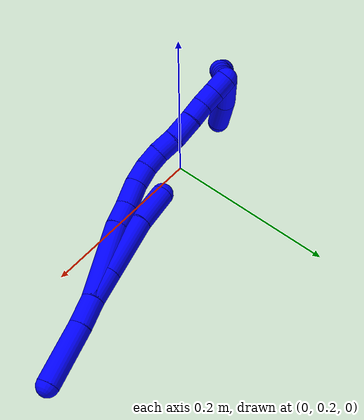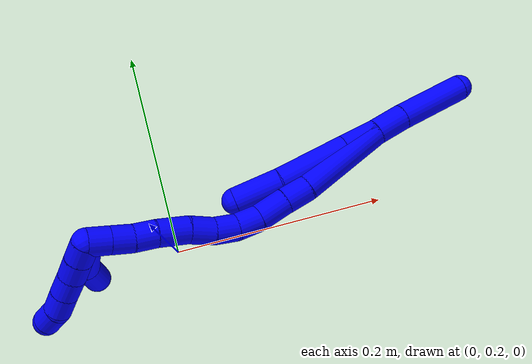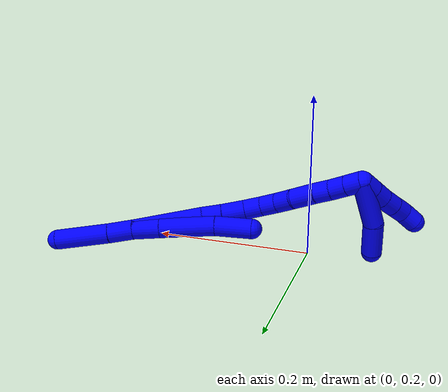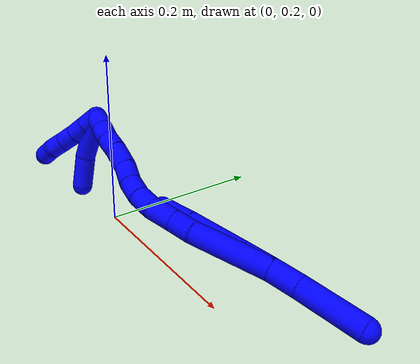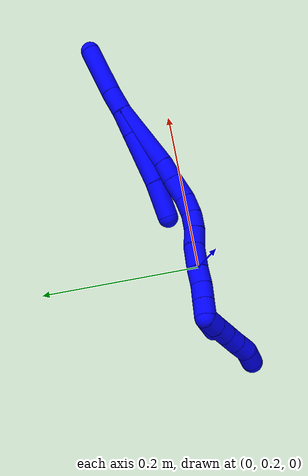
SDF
<sdf version="1.7">
 <world name="default">
  <model name="1">
   <static>0</static>
   <link name="1">
    <collision name="collision-cylinder-e_1_2_8">
     <pose>-0.000503 0.000308 -0.017146 -3.12366 -0.029312 2.04348</pose>
     <geometry><cylinder><radius>0.0125</radius><length>0.034312</length></cylinder></geometry>
     <surface>
      <friction><ode><mu>1.16</mu><mu2>1.16</mu2><slip1>0</slip1><slip2>0</slip2></ode></friction>
      <contact><ode><kp>1e+06</kp><kd>1</kd><max_vel>0</max_vel><min_depth>0.001</min_depth></ode></contact>
     </surface>
    </collision>
    <visual name="visual-cylinder-e_1_2_8">
     <pose>-0.000503 0.000308 -0.017146 -3.12366 -0.029312 2.04348</pose>
     <geometry><cylinder><radius>0.0125</radius><length>0.034312</length></cylinder></geometry>
     <material><ambient>0 0 1 1</ambient></material>
    </visual>
    <collision name="collision-cylinder-e_2_8_9">
     <pose>-0.001864 0.001558 -0.069112 -3.11452 -0.024645 1.47715</pose>
     <geometry><cylinder><radius>0.0125</radius><length>0.069688</length></cylinder></geometry>
     <surface>
      <friction><ode><mu>1.16</mu><mu2>1.16</mu2><slip1>0</slip1><slip2>0</slip2></ode></friction>
      <contact><ode><kp>1e+06</kp><kd>1</kd><max_vel>0</max_vel><min_depth>0.001</min_depth></ode></contact>
     </surface>
    </collision>
    <visual name="visual-cylinder-e_2_8_9">
     <pose>-0.001864 0.001558 -0.069112 -3.11452 -0.024645 1.47715</pose>
     <geometry><cylinder><radius>0.0125</radius><length>0.069688</length></cylinder></geometry>
     <material><ambient>0 0 1 1</ambient></material>
    </visual>
    <collision name="collision-cylinder-e_3_9_6">
     <pose>-0.004811 0.00561 -0.126626 -3.00542 -0.090932 1.17673</pose>
     <geometry><cylinder><radius>0.0125</radius><length>0.046</length></cylinder></geometry>
     <surface>
      <friction><ode><mu>1.16</mu><mu2>1.16</mu2><slip1>0</slip1><slip2>0</slip2></ode></friction>
      <contact><ode><kp>1e+06</kp><kd>1</kd><max_vel>0</max_vel><min_depth>0.001</min_depth></ode></contact>
     </surface>
    </collision>
    <visual name="visual-cylinder-e_3_9_6">
     <pose>-0.004811 0.00561 -0.126626 -3.00542 -0.090932 1.17673</pose>
     <geometry><cylinder><radius>0.0125</radius><length>0.046</length></cylinder></geometry>
     <material><ambient>0 0 1 1</ambient></material>
    </visual>
    <collision name="collision-cylinder-e_1_2_10">
     <pose>-0.000551 0.001163 0.015721 -0.073842 -0.034923 0.00129</pose>
     <geometry><cylinder><radius>0.0125</radius><length>0.031547</length></cylinder></geometry>
     <surface>
      <friction><ode><mu>1.16</mu><mu2>1.16</mu2><slip1>0</slip1><slip2>0</slip2></ode></friction>
      <contact><ode><kp>1e+06</kp><kd>1</kd><max_vel>0</max_vel><min_depth>0.001</min_depth></ode></contact>
     </surface>
    </collision>
    <visual name="visual-cylinder-e_1_2_10">
     <pose>-0.000551 0.001163 0.015721 -0.073842 -0.034923 0.00129</pose>
     <geometry><cylinder><radius>0.0125</radius><length>0.031547</length></cylinder></geometry>
     <material><ambient>0 0 1 1</ambient></material>
    </visual>
    <collision name="collision-cylinder-e_2_10_5">
     <pose>-0.000505 0.004117 0.065616 -0.052376 0.017415 -0.000456</pose>
     <geometry><cylinder><radius>0.0125</radius><length>0.068453</length></cylinder></geometry>
     <surface>
      <friction><ode><mu>1.16</mu><mu2>1.16</mu2><slip1>0</slip1><slip2>0</slip2></ode></friction>
      <contact><ode><kp>1e+06</kp><kd>1</kd><max_vel>0</max_vel><min_depth>0.001</min_depth></ode></contact>
     </surface>
    </collision>
    <visual name="visual-cylinder-e_2_10_5">
     <pose>-0.000505 0.004117 0.065616 -0.052376 0.017415 -0.000456</pose>
     <geometry><cylinder><radius>0.0125</radius><length>0.068453</length></cylinder></geometry>
     <material><ambient>0 0 1 1</ambient></material>
    </visual>
    <collision name="collision-cylinder-e_1_2_11">
     <pose>0.007485 -0.002797 -0.043269 3.07705 0.170948 2.42097</pose>
     <geometry><cylinder><radius>0.0125</radius><length>0.088002</length></cylinder></geometry>
     <surface>
      <friction><ode><mu>1.16</mu><mu2>1.16</mu2><slip1>0</slip1><slip2>0</slip2></ode></friction>
      <contact><ode><kp>1e+06</kp><kd>1</kd><max_vel>0</max_vel><min_depth>0.001</min_depth></ode></contact>
     </surface>
    </collision>
    <visual name="visual-cylinder-e_1_2_11">
     <pose>0.007485 -0.002797 -0.043269 3.07705 0.170948 2.42097</pose>
     <geometry><cylinder><radius>0.0125</radius><length>0.088002</length></cylinder></geometry>
     <material><ambient>0 0 1 1</ambient></material>
    </visual>
    <collision name="collision-cylinder-e_2_11_12">
     <pose>0.015384 -0.006358 -0.099188 3.08119 0.032611 0.989851</pose>
     <geometry><cylinder><radius>0.0125</radius><length>0.025358</length></cylinder></geometry>
     <surface>
      <friction><ode><mu>1.16</mu><mu2>1.16</mu2><slip1>0</slip1><slip2>0</slip2></ode></friction>
      <contact><ode><kp>1e+06</kp><kd>1</kd><max_vel>0</max_vel><min_depth>0.001</min_depth></ode></contact>
     </surface>
    </collision>
    <visual name="visual-cylinder-e_2_11_12">
     <pose>0.015384 -0.006358 -0.099188 3.08119 0.032611 0.989851</pose>
     <geometry><cylinder><radius>0.0125</radius><length>0.025358</length></cylinder></geometry>
     <material><ambient>0 0 1 1</ambient></material>
    </visual>
    <collision name="collision-cylinder-e_3_12_13">
     <pose>0.016944 -0.008457 -0.126458 3.05062 0.077912 1.41627</pose>
     <geometry><cylinder><radius>0.0125</radius><length>0.029453</length></cylinder></geometry>
     <surface>
      <friction><ode><mu>1.16</mu><mu2>1.16</mu2><slip1>0</slip1><slip2>0</slip2></ode></friction>
      <contact><ode><kp>1e+06</kp><kd>1</kd><max_vel>0</max_vel><min_depth>0.001</min_depth></ode></contact>
     </surface>
    </collision>
    <visual name="visual-cylinder-e_3_12_13">
     <pose>0.016944 -0.008457 -0.126458 3.05062 0.077912 1.41627</pose>
     <geometry><cylinder><radius>0.0125</radius><length>0.029453</length></cylinder></geometry>
     <material><ambient>0 0 1 1</ambient></material>
    </visual>
    <collision name="collision-cylinder-e_4_13_14">
     <pose>0.016881 -0.01154 -0.152237 2.98606 -0.106644 -1.20107</pose>
     <geometry><cylinder><radius>0.0125</radius><length>0.022717</length></cylinder></geometry>
     <surface>
      <friction><ode><mu>1.16</mu><mu2>1.16</mu2><slip1>0</slip1><slip2>0</slip2></ode></friction>
      <contact><ode><kp>1e+06</kp><kd>1</kd><max_vel>0</max_vel><min_depth>0.001</min_depth></ode></contact>
     </surface>
    </collision>
    <visual name="visual-cylinder-e_4_13_14">
     <pose>0.016881 -0.01154 -0.152237 2.98606 -0.106644 -1.20107</pose>
     <geometry><cylinder><radius>0.0125</radius><length>0.022717</length></cylinder></geometry>
     <material><ambient>0 0 1 1</ambient></material>
    </visual>
    <collision name="collision-cylinder-e_5_14_15">
     <pose>0.012313 -0.015586 -0.173412 2.91622 -0.315905 -1.90615</pose>
     <geometry><cylinder><radius>0.0125</radius><length>0.021624</length></cylinder></geometry>
     <surface>
      <friction><ode><mu>1.16</mu><mu2>1.16</mu2><slip1>0</slip1><slip2>0</slip2></ode></friction>
      <contact><ode><kp>1e+06</kp><kd>1</kd><max_vel>0</max_vel><min_depth>0.001</min_depth></ode></contact>
     </surface>
    </collision>
    <visual name="visual-cylinder-e_5_14_15">
     <pose>0.012313 -0.015586 -0.173412 2.91622 -0.315905 -1.90615</pose>
     <geometry><cylinder><radius>0.0125</radius><length>0.021624</length></cylinder></geometry>
     <material><ambient>0 0 1 1</ambient></material>
    </visual>
    <collision name="collision-cylinder-e_6_15_16">
     <pose>0.003295 -0.020988 -0.19304 2.82911 -0.510693 -2.0557</pose>
     <geometry><cylinder><radius>0.0125</radius><length>0.023155</length></cylinder></geometry>
     <surface>
      <friction><ode><mu>1.16</mu><mu2>1.16</mu2><slip1>0</slip1><slip2>0</slip2></ode></friction>
      <contact><ode><kp>1e+06</kp><kd>1</kd><max_vel>0</max_vel><min_depth>0.001</min_depth></ode></contact>
     </surface>
    </collision>
    <visual name="visual-cylinder-e_6_15_16">
     <pose>0.003295 -0.020988 -0.19304 2.82911 -0.510693 -2.0557</pose>
     <geometry><cylinder><radius>0.0125</radius><length>0.023155</length></cylinder></geometry>
     <material><ambient>0 0 1 1</ambient></material>
    </visual>
    <collision name="collision-cylinder-e_7_16_17">
     <pose>-0.007332 -0.027744 -0.215835 2.87142 -0.34835 -1.8262</pose>
     <geometry><cylinder><radius>0.0125</radius><length>0.029108</length></cylinder></geometry>
     <surface>
      <friction><ode><mu>1.16</mu><mu2>1.16</mu2><slip1>0</slip1><slip2>0</slip2></ode></friction>
      <contact><ode><kp>1e+06</kp><kd>1</kd><max_vel>0</max_vel><min_depth>0.001</min_depth></ode></contact>
     </surface>
    </collision>
    <visual name="visual-cylinder-e_7_16_17">
     <pose>-0.007332 -0.027744 -0.215835 2.87142 -0.34835 -1.8262</pose>
     <geometry><cylinder><radius>0.0125</radius><length>0.029108</length></cylinder></geometry>
     <material><ambient>0 0 1 1</ambient></material>
    </visual>
    <collision name="collision-cylinder-e_8_17_18">
     <pose>-0.015023 -0.033458 -0.238677 2.93122 -0.269065 -1.81671</pose>
     <geometry><cylinder><radius>0.0125</radius><length>0.020489</length></cylinder></geometry>
     <surface>
      <friction><ode><mu>1.16</mu><mu2>1.16</mu2><slip1>0</slip1><slip2>0</slip2></ode></friction>
      <contact><ode><kp>1e+06</kp><kd>1</kd><max_vel>0</max_vel><min_depth>0.001</min_depth></ode></contact>
     </surface>
    </collision>
    <visual name="visual-cylinder-e_8_17_18">
     <pose>-0.015023 -0.033458 -0.238677 2.93122 -0.269065 -1.81671</pose>
     <geometry><cylinder><radius>0.0125</radius><length>0.020489</length></cylinder></geometry>
     <material><ambient>0 0 1 1</ambient></material>
    </visual>
    <collision name="collision-cylinder-e_9_18_19">
     <pose>-0.021486 -0.038171 -0.257267 2.85311 -0.381638 -1.85212</pose>
     <geometry><cylinder><radius>0.0125</radius><length>0.020079</length></cylinder></geometry>
     <surface>
      <friction><ode><mu>1.16</mu><mu2>1.16</mu2><slip1>0</slip1><slip2>0</slip2></ode></friction>
      <contact><ode><kp>1e+06</kp><kd>1</kd><max_vel>0</max_vel><min_depth>0.001</min_depth></ode></contact>
     </surface>
    </collision>
    <visual name="visual-cylinder-e_9_18_19">
     <pose>-0.021486 -0.038171 -0.257267 2.85311 -0.381638 -1.85212</pose>
     <geometry><cylinder><radius>0.0125</radius><length>0.020079</length></cylinder></geometry>
     <material><ambient>0 0 1 1</ambient></material>
    </visual>
    <collision name="collision-cylinder-e_10_19_1">
     <pose>-0.028897 -0.043521 -0.275109 2.84741 -0.375671 -1.81738</pose>
     <geometry><cylinder><radius>0.0125</radius><length>0.020015</length></cylinder></geometry>
     <surface>
      <friction><ode><mu>1.16</mu><mu2>1.16</mu2><slip1>0</slip1><slip2>0</slip2></ode></friction>
      <contact><ode><kp>1e+06</kp><kd>1</kd><max_vel>0</max_vel><min_depth>0.001</min_depth></ode></contact>
     </surface>
    </collision>
    <visual name="visual-cylinder-e_10_19_1">
     <pose>-0.028897 -0.043521 -0.275109 2.84741 -0.375671 -1.81738</pose>
     <geometry><cylinder><radius>0.0125</radius><length>0.020015</length></cylinder></geometry>
     <material><ambient>0 0 1 1</ambient></material>
    </visual>
    <collision name="collision-cylinder-e_1_1_20">
     <pose>-0.025586 -0.018344 -0.2897 -1.77187 0.240656 -0.293952</pose>
     <geometry><cylinder><radius>0.0125</radius><length>0.058587</length></cylinder></geometry>
     <surface>
      <friction><ode><mu>1.16</mu><mu2>1.16</mu2><slip1>0</slip1><slip2>0</slip2></ode></friction>
      <contact><ode><kp>1e+06</kp><kd>1</kd><max_vel>0</max_vel><min_depth>0.001</min_depth></ode></contact>
     </surface>
    </collision>
    <visual name="visual-cylinder-e_1_1_20">
     <pose>-0.025586 -0.018344 -0.2897 -1.77187 0.240656 -0.293952</pose>
     <geometry><cylinder><radius>0.0125</radius><length>0.058587</length></cylinder></geometry>
     <material><ambient>0 0 1 1</ambient></material>
    </visual>
    <collision name="collision-cylinder-e_2_20_4">
     <pose>-0.012608 0.029297 -0.293914 -1.49668 0.293791 -0.273054</pose>
     <geometry><cylinder><radius>0.0125</radius><length>0.041413</length></cylinder></geometry>
     <surface>
      <friction><ode><mu>1.16</mu><mu2>1.16</mu2><slip1>0</slip1><slip2>0</slip2></ode></friction>
      <contact><ode><kp>1e+06</kp><kd>1</kd><max_vel>0</max_vel><min_depth>0.001</min_depth></ode></contact>
     </surface>
    </collision>
    <visual name="visual-cylinder-e_2_20_4">
     <pose>-0.012608 0.029297 -0.293914 -1.49668 0.293791 -0.273054</pose>
     <geometry><cylinder><radius>0.0125</radius><length>0.041413</length></cylinder></geometry>
     <material><ambient>0 0 1 1</ambient></material>
    </visual>
    <collision name="collision-cylinder-e_1_1_21">
     <pose>-0.02822 -0.039561 -0.29008 -2.30923 0.449908 -0.955424</pose>
     <geometry><cylinder><radius>0.0125</radius><length>0.02</length></cylinder></geometry>
     <surface>
      <friction><ode><mu>1.16</mu><mu2>1.16</mu2><slip1>0</slip1><slip2>0</slip2></ode></friction>
      <contact><ode><kp>1e+06</kp><kd>1</kd><max_vel>0</max_vel><min_depth>0.001</min_depth></ode></contact>
     </surface>
    </collision>
    <visual name="visual-cylinder-e_1_1_21">
     <pose>-0.02822 -0.039561 -0.29008 -2.30923 0.449908 -0.955424</pose>
     <geometry><cylinder><radius>0.0125</radius><length>0.02</length></cylinder></geometry>
     <material><ambient>0 0 1 1</ambient></material>
    </visual>
    <collision name="collision-cylinder-e_2_21_22">
     <pose>-0.019383 -0.026242 -0.302101 -2.3008 0.465366 -0.974855</pose>
     <geometry><cylinder><radius>0.0125</radius><length>0.02</length></cylinder></geometry>
     <surface>
      <friction><ode><mu>1.16</mu><mu2>1.16</mu2><slip1>0</slip1><slip2>0</slip2></ode></friction>
      <contact><ode><kp>1e+06</kp><kd>1</kd><max_vel>0</max_vel><min_depth>0.001</min_depth></ode></contact>
     </surface>
    </collision>
    <visual name="visual-cylinder-e_2_21_22">
     <pose>-0.019383 -0.026242 -0.302101 -2.3008 0.465366 -0.974855</pose>
     <geometry><cylinder><radius>0.0125</radius><length>0.02</length></cylinder></geometry>
     <material><ambient>0 0 1 1</ambient></material>
    </visual>
    <collision name="collision-cylinder-e_3_22_23">
     <pose>-0.010406 -0.013382 -0.314494 -2.3746 0.465642 -1.06266</pose>
     <geometry><cylinder><radius>0.0125</radius><length>0.02</length></cylinder></geometry>
     <surface>
      <friction><ode><mu>1.16</mu><mu2>1.16</mu2><slip1>0</slip1><slip2>0</slip2></ode></friction>
      <contact><ode><kp>1e+06</kp><kd>1</kd><max_vel>0</max_vel><min_depth>0.001</min_depth></ode></contact>
     </surface>
    </collision>
    <visual name="visual-cylinder-e_3_22_23">
     <pose>-0.010406 -0.013382 -0.314494 -2.3746 0.465642 -1.06266</pose>
     <geometry><cylinder><radius>0.0125</radius><length>0.02</length></cylinder></geometry>
     <material><ambient>0 0 1 1</ambient></material>
    </visual>
    <collision name="collision-cylinder-e_4_23_24">
     <pose>-0.001134 -0.001192 -0.327351 -2.39126 0.498546 -1.14769</pose>
     <geometry><cylinder><radius>0.0125</radius><length>0.02</length></cylinder></geometry>
     <surface>
      <friction><ode><mu>1.16</mu><mu2>1.16</mu2><slip1>0</slip1><slip2>0</slip2></ode></friction>
      <contact><ode><kp>1e+06</kp><kd>1</kd><max_vel>0</max_vel><min_depth>0.001</min_depth></ode></contact>
     </surface>
    </collision>
    <visual name="visual-cylinder-e_4_23_24">
     <pose>-0.001134 -0.001192 -0.327351 -2.39126 0.498546 -1.14769</pose>
     <geometry><cylinder><radius>0.0125</radius><length>0.02</length></cylinder></geometry>
     <material><ambient>0 0 1 1</ambient></material>
    </visual>
    <collision name="collision-cylinder-e_5_24_3">
     <pose>0.005392 0.011959 -0.340532 -2.32703 0.17542 -0.402162</pose>
     <geometry><cylinder><radius>0.0125</radius><length>0.02</length></cylinder></geometry>
     <surface>
      <friction><ode><mu>1.16</mu><mu2>1.16</mu2><slip1>0</slip1><slip2>0</slip2></ode></friction>
      <contact><ode><kp>1e+06</kp><kd>1</kd><max_vel>0</max_vel><min_depth>0.001</min_depth></ode></contact>
     </surface>
    </collision>
    <visual name="visual-cylinder-e_5_24_3">
     <pose>0.005392 0.011959 -0.340532 -2.32703 0.17542 -0.402162</pose>
     <geometry><cylinder><radius>0.0125</radius><length>0.02</length></cylinder></geometry>
     <material><ambient>0 0 1 1</ambient></material>
    </visual>
    <collision name="collision-sphere-3">
     <pose>0.007138 0.019122 -0.347289 0 -0 0</pose>
     <geometry><sphere><radius>0.0125</radius></sphere></geometry>
     <surface>
      <friction><ode><mu>1.16</mu><mu2>1.16</mu2><slip1>0</slip1><slip2>0</slip2></ode></friction>
      <contact><ode><kp>1e+06</kp><kd>1</kd><max_vel>0</max_vel><min_depth>0.001</min_depth></ode></contact>
     </surface>
    </collision>
    <visual name="visual-sphere-3">
     <pose>0.007138 0.019122 -0.347289 0 -0 0</pose>
     <geometry><sphere><radius>0.0125</radius></sphere></geometry>
     <material><ambient>0 0 1 1</ambient></material>
    </visual>
    <collision name="collision-sphere-24">
     <pose>0.003647 0.004797 -0.333776 0 -0 0</pose>
     <geometry><sphere><radius>0.0125</radius></sphere></geometry>
     <surface>
      <friction><ode><mu>1.16</mu><mu2>1.16</mu2><slip1>0</slip1><slip2>0</slip2></ode></friction>
      <contact><ode><kp>1e+06</kp><kd>1</kd><max_vel>0</max_vel><min_depth>0.001</min_depth></ode></contact>
     </surface>
    </collision>
    <visual name="visual-sphere-24">
     <pose>0.003647 0.004797 -0.333776 0 -0 0</pose>
     <geometry><sphere><radius>0.0125</radius></sphere></geometry>
     <material><ambient>0 0 1 1</ambient></material>
    </visual>
    <collision name="collision-sphere-23">
     <pose>-0.005916 -0.007181 -0.320927 0 -0 0</pose>
     <geometry><sphere><radius>0.0125</radius></sphere></geometry>
     <surface>
      <friction><ode><mu>1.16</mu><mu2>1.16</mu2><slip1>0</slip1><slip2>0</slip2></ode></friction>
      <contact><ode><kp>1e+06</kp><kd>1</kd><max_vel>0</max_vel><min_depth>0.001</min_depth></ode></contact>
     </surface>
    </collision>
    <visual name="visual-sphere-23">
     <pose>-0.005916 -0.007181 -0.320927 0 -0 0</pose>
     <geometry><sphere><radius>0.0125</radius></sphere></geometry>
     <material><ambient>0 0 1 1</ambient></material>
    </visual>
    <collision name="collision-sphere-22">
     <pose>-0.014896 -0.019583 -0.30806 0 -0 0</pose>
     <geometry><sphere><radius>0.0125</radius></sphere></geometry>
     <surface>
      <friction><ode><mu>1.16</mu><mu2>1.16</mu2><slip1>0</slip1><slip2>0</slip2></ode></friction>
      <contact><ode><kp>1e+06</kp><kd>1</kd><max_vel>0</max_vel><min_depth>0.001</min_depth></ode></contact>
     </surface>
    </collision>
    <visual name="visual-sphere-22">
     <pose>-0.014896 -0.019583 -0.30806 0 -0 0</pose>
     <geometry><sphere><radius>0.0125</radius></sphere></geometry>
     <material><ambient>0 0 1 1</ambient></material>
    </visual>
    <collision name="collision-sphere-21">
     <pose>-0.023871 -0.032901 -0.296141 0 -0 0</pose>
     <geometry><sphere><radius>0.0125</radius></sphere></geometry>
     <surface>
      <friction><ode><mu>1.16</mu><mu2>1.16</mu2><slip1>0</slip1><slip2>0</slip2></ode></friction>
      <contact><ode><kp>1e+06</kp><kd>1</kd><max_vel>0</max_vel><min_depth>0.001</min_depth></ode></contact>
     </surface>
    </collision>
    <visual name="visual-sphere-21">
     <pose>-0.023871 -0.032901 -0.296141 0 -0 0</pose>
     <geometry><sphere><radius>0.0125</radius></sphere></geometry>
     <material><ambient>0 0 1 1</ambient></material>
    </visual>
    <collision name="collision-sphere-4">
     <pose>-0.006612 0.049062 -0.292447 0 -0 0</pose>
     <geometry><sphere><radius>0.0125</radius></sphere></geometry>
     <surface>
      <friction><ode><mu>1.16</mu><mu2>1.16</mu2><slip1>0</slip1><slip2>0</slip2></ode></friction>
      <contact><ode><kp>1e+06</kp><kd>1</kd><max_vel>0</max_vel><min_depth>0.001</min_depth></ode></contact>
     </surface>
    </collision>
    <visual name="visual-sphere-4">
     <pose>-0.006612 0.049062 -0.292447 0 -0 0</pose>
     <geometry><sphere><radius>0.0125</radius></sphere></geometry>
     <material><ambient>0 0 1 1</ambient></material>
    </visual>
    <collision name="collision-sphere-20">
     <pose>-0.018605 0.009533 -0.295382 0 -0 0</pose>
     <geometry><sphere><radius>0.0125</radius></sphere></geometry>
     <surface>
      <friction><ode><mu>1.16</mu><mu2>1.16</mu2><slip1>0</slip1><slip2>0</slip2></ode></friction>
      <contact><ode><kp>1e+06</kp><kd>1</kd><max_vel>0</max_vel><min_depth>0.001</min_depth></ode></contact>
     </surface>
    </collision>
    <visual name="visual-sphere-20">
     <pose>-0.018605 0.009533 -0.295382 0 -0 0</pose>
     <geometry><sphere><radius>0.0125</radius></sphere></geometry>
     <material><ambient>0 0 1 1</ambient></material>
    </visual>
    <collision name="collision-sphere-5">
     <pose>9.1e-05 0.005909 0.099791 0 -0 0</pose>
     <geometry><sphere><radius>0.0125</radius></sphere></geometry>
     <surface>
      <friction><ode><mu>1.16</mu><mu2>1.16</mu2><slip1>0</slip1><slip2>0</slip2></ode></friction>
      <contact><ode><kp>1e+06</kp><kd>1</kd><max_vel>0</max_vel><min_depth>0.001</min_depth></ode></contact>
     </surface>
    </collision>
    <visual name="visual-sphere-5">
     <pose>9.1e-05 0.005909 0.099791 0 -0 0</pose>
     <geometry><sphere><radius>0.0125</radius></sphere></geometry>
     <material><ambient>0 0 1 1</ambient></material>
    </visual>
    <collision name="collision-sphere-10">
     <pose>-0.001101 0.002326 0.031441 0 -0 0</pose>
     <geometry><sphere><radius>0.0125</radius></sphere></geometry>
     <surface>
      <friction><ode><mu>1.16</mu><mu2>1.16</mu2><slip1>0</slip1><slip2>0</slip2></ode></friction>
      <contact><ode><kp>1e+06</kp><kd>1</kd><max_vel>0</max_vel><min_depth>0.001</min_depth></ode></contact>
     </surface>
    </collision>
    <visual name="visual-sphere-10">
     <pose>-0.001101 0.002326 0.031441 0 -0 0</pose>
     <geometry><sphere><radius>0.0125</radius></sphere></geometry>
     <material><ambient>0 0 1 1</ambient></material>
    </visual>
    <collision name="collision-sphere-6">
     <pose>-0.0069 0.008719 -0.149319 0 -0 0</pose>
     <geometry><sphere><radius>0.0125</radius></sphere></geometry>
     <surface>
      <friction><ode><mu>1.16</mu><mu2>1.16</mu2><slip1>0</slip1><slip2>0</slip2></ode></friction>
      <contact><ode><kp>1e+06</kp><kd>1</kd><max_vel>0</max_vel><min_depth>0.001</min_depth></ode></contact>
     </surface>
    </collision>
    <visual name="visual-sphere-6">
     <pose>-0.0069 0.008719 -0.149319 0 -0 0</pose>
     <geometry><sphere><radius>0.0125</radius></sphere></geometry>
     <material><ambient>0 0 1 1</ambient></material>
    </visual>
    <collision name="collision-sphere-9">
     <pose>-0.002723 0.002501 -0.103933 0 -0 0</pose>
     <geometry><sphere><radius>0.0125</radius></sphere></geometry>
     <surface>
      <friction><ode><mu>1.16</mu><mu2>1.16</mu2><slip1>0</slip1><slip2>0</slip2></ode></friction>
      <contact><ode><kp>1e+06</kp><kd>1</kd><max_vel>0</max_vel><min_depth>0.001</min_depth></ode></contact>
     </surface>
    </collision>
    <visual name="visual-sphere-9">
     <pose>-0.002723 0.002501 -0.103933 0 -0 0</pose>
     <geometry><sphere><radius>0.0125</radius></sphere></geometry>
     <material><ambient>0 0 1 1</ambient></material>
    </visual>
    <collision name="collision-sphere-2">
     <geometry><sphere><radius>0.0125</radius></sphere></geometry>
     <surface>
      <friction><ode><mu>1.16</mu><mu2>1.16</mu2><slip1>0</slip1><slip2>0</slip2></ode></friction>
      <contact><ode><kp>1e+06</kp><kd>1</kd><max_vel>0</max_vel><min_depth>0.001</min_depth></ode></contact>
     </surface>
    </collision>
    <visual name="visual-sphere-2">
     <geometry><sphere><radius>0.0125</radius></sphere></geometry>
     <material><ambient>0 0 1 1</ambient></material>
    </visual>
    <collision name="collision-sphere-19">
     <pose>-0.025225 -0.040821 -0.266199 0 -0 0</pose>
     <geometry><sphere><radius>0.0125</radius></sphere></geometry>
     <surface>
      <friction><ode><mu>1.16</mu><mu2>1.16</mu2><slip1>0</slip1><slip2>0</slip2></ode></friction>
      <contact><ode><kp>1e+06</kp><kd>1</kd><max_vel>0</max_vel><min_depth>0.001</min_depth></ode></contact>
     </surface>
    </collision>
    <visual name="visual-sphere-19">
     <pose>-0.025225 -0.040821 -0.266199 0 -0 0</pose>
     <geometry><sphere><radius>0.0125</radius></sphere></geometry>
     <material><ambient>0 0 1 1</ambient></material>
    </visual>
    <collision name="collision-sphere-8">
     <pose>-0.001006 0.000615 -0.034292 0 -0 0</pose>
     <geometry><sphere><radius>0.0125</radius></sphere></geometry>
     <surface>
      <friction><ode><mu>1.16</mu><mu2>1.16</mu2><slip1>0</slip1><slip2>0</slip2></ode></friction>
      <contact><ode><kp>1e+06</kp><kd>1</kd><max_vel>0</max_vel><min_depth>0.001</min_depth></ode></contact>
     </surface>
    </collision>
    <visual name="visual-sphere-8">
     <pose>-0.001006 0.000615 -0.034292 0 -0 0</pose>
     <geometry><sphere><radius>0.0125</radius></sphere></geometry>
     <material><ambient>0 0 1 1</ambient></material>
    </visual>
    <collision name="collision-sphere-11">
     <pose>0.014971 -0.005593 -0.086539 0 -0 0</pose>
     <geometry><sphere><radius>0.0125</radius></sphere></geometry>
     <surface>
      <friction><ode><mu>1.16</mu><mu2>1.16</mu2><slip1>0</slip1><slip2>0</slip2></ode></friction>
      <contact><ode><kp>1e+06</kp><kd>1</kd><max_vel>0</max_vel><min_depth>0.001</min_depth></ode></contact>
     </surface>
    </collision>
    <visual name="visual-sphere-11">
     <pose>0.014971 -0.005593 -0.086539 0 -0 0</pose>
     <geometry><sphere><radius>0.0125</radius></sphere></geometry>
     <material><ambient>0 0 1 1</ambient></material>
    </visual>
    <collision name="collision-sphere-12">
     <pose>0.015797 -0.007123 -0.111837 0 -0 0</pose>
     <geometry><sphere><radius>0.0125</radius></sphere></geometry>
     <surface>
      <friction><ode><mu>1.16</mu><mu2>1.16</mu2><slip1>0</slip1><slip2>0</slip2></ode></friction>
      <contact><ode><kp>1e+06</kp><kd>1</kd><max_vel>0</max_vel><min_depth>0.001</min_depth></ode></contact>
     </surface>
    </collision>
    <visual name="visual-sphere-12">
     <pose>0.015797 -0.007123 -0.111837 0 -0 0</pose>
     <geometry><sphere><radius>0.0125</radius></sphere></geometry>
     <material><ambient>0 0 1 1</ambient></material>
    </visual>
    <collision name="collision-sphere-13">
     <pose>0.01809 -0.009791 -0.141079 0 -0 0</pose>
     <geometry><sphere><radius>0.0125</radius></sphere></geometry>
     <surface>
      <friction><ode><mu>1.16</mu><mu2>1.16</mu2><slip1>0</slip1><slip2>0</slip2></ode></friction>
      <contact><ode><kp>1e+06</kp><kd>1</kd><max_vel>0</max_vel><min_depth>0.001</min_depth></ode></contact>
     </surface>
    </collision>
    <visual name="visual-sphere-13">
     <pose>0.01809 -0.009791 -0.141079 0 -0 0</pose>
     <geometry><sphere><radius>0.0125</radius></sphere></geometry>
     <material><ambient>0 0 1 1</ambient></material>
    </visual>
    <collision name="collision-sphere-14">
     <pose>0.015672 -0.01329 -0.163394 0 -0 0</pose>
     <geometry><sphere><radius>0.0125</radius></sphere></geometry>
     <surface>
      <friction><ode><mu>1.16</mu><mu2>1.16</mu2><slip1>0</slip1><slip2>0</slip2></ode></friction>
      <contact><ode><kp>1e+06</kp><kd>1</kd><max_vel>0</max_vel><min_depth>0.001</min_depth></ode></contact>
     </surface>
    </collision>
    <visual name="visual-sphere-14">
     <pose>0.015672 -0.01329 -0.163394 0 -0 0</pose>
     <geometry><sphere><radius>0.0125</radius></sphere></geometry>
     <material><ambient>0 0 1 1</ambient></material>
    </visual>
    <collision name="collision-sphere-15">
     <pose>0.008954 -0.017883 -0.183429 0 -0 0</pose>
     <geometry><sphere><radius>0.0125</radius></sphere></geometry>
     <surface>
      <friction><ode><mu>1.16</mu><mu2>1.16</mu2><slip1>0</slip1><slip2>0</slip2></ode></friction>
      <contact><ode><kp>1e+06</kp><kd>1</kd><max_vel>0</max_vel><min_depth>0.001</min_depth></ode></contact>
     </surface>
    </collision>
    <visual name="visual-sphere-15">
     <pose>0.008954 -0.017883 -0.183429 0 -0 0</pose>
     <geometry><sphere><radius>0.0125</radius></sphere></geometry>
     <material><ambient>0 0 1 1</ambient></material>
    </visual>
    <collision name="collision-sphere-16">
     <pose>-0.002364 -0.024093 -0.202651 0 -0 0</pose>
     <geometry><sphere><radius>0.0125</radius></sphere></geometry>
     <surface>
      <friction><ode><mu>1.16</mu><mu2>1.16</mu2><slip1>0</slip1><slip2>0</slip2></ode></friction>
      <contact><ode><kp>1e+06</kp><kd>1</kd><max_vel>0</max_vel><min_depth>0.001</min_depth></ode></contact>
     </surface>
    </collision>
    <visual name="visual-sphere-16">
     <pose>-0.002364 -0.024093 -0.202651 0 -0 0</pose>
     <geometry><sphere><radius>0.0125</radius></sphere></geometry>
     <material><ambient>0 0 1 1</ambient></material>
    </visual>
    <collision name="collision-sphere-17">
     <pose>-0.0123 -0.031395 -0.229018 0 -0 0</pose>
     <geometry><sphere><radius>0.0125</radius></sphere></geometry>
     <surface>
      <friction><ode><mu>1.16</mu><mu2>1.16</mu2><slip1>0</slip1><slip2>0</slip2></ode></friction>
      <contact><ode><kp>1e+06</kp><kd>1</kd><max_vel>0</max_vel><min_depth>0.001</min_depth></ode></contact>
     </surface>
    </collision>
    <visual name="visual-sphere-17">
     <pose>-0.0123 -0.031395 -0.229018 0 -0 0</pose>
     <geometry><sphere><radius>0.0125</radius></sphere></geometry>
     <material><ambient>0 0 1 1</ambient></material>
    </visual>
    <collision name="collision-sphere-18">
     <pose>-0.017747 -0.03552 -0.248335 0 -0 0</pose>
     <geometry><sphere><radius>0.0125</radius></sphere></geometry>
     <surface>
      <friction><ode><mu>1.16</mu><mu2>1.16</mu2><slip1>0</slip1><slip2>0</slip2></ode></friction>
      <contact><ode><kp>1e+06</kp><kd>1</kd><max_vel>0</max_vel><min_depth>0.001</min_depth></ode></contact>
     </surface>
    </collision>
    <visual name="visual-sphere-18">
     <pose>-0.017747 -0.03552 -0.248335 0 -0 0</pose>
     <geometry><sphere><radius>0.0125</radius></sphere></geometry>
     <material><ambient>0 0 1 1</ambient></material>
    </visual>
    <collision name="collision-sphere-1">
     <pose>-0.032568 -0.04622 -0.284018 0 -0 0</pose>
     <geometry><sphere><radius>0.0125</radius></sphere></geometry>
     <surface>
      <friction><ode><mu>1.16</mu><mu2>1.16</mu2><slip1>0</slip1><slip2>0</slip2></ode></friction>
      <contact><ode><kp>1e+06</kp><kd>1</kd><max_vel>0</max_vel><min_depth>0.001</min_depth></ode></contact>
     </surface>
    </collision>
    <visual name="visual-sphere-1">
     <pose>-0.032568 -0.04622 -0.284018 0 -0 0</pose>
     <geometry><sphere><radius>0.0125</radius></sphere></geometry>
     <material><ambient>0 0 1 1</ambient></material>
    </visual>
    <inertial>
     <pose>-0.003698 -0.007208 -0.147264 0 -0 0</pose>
     <mass>0.75</mass>
     <inertia>
      <ixx>8.8e-05</ixx>
      <ixy>0</ixy>
      <ixz>0</ixz>
      <iyy>0.000148</iyy>
      <iyz>0</iyz>
      <izz>-7.3e-05</izz>
     </inertia>
    </inertial>
   </link>
   <pose>0.2107 0.259593 0.028016 -1.67857 0.106211 -1.32054</pose>
  </model>
 </world>
</sdf>
